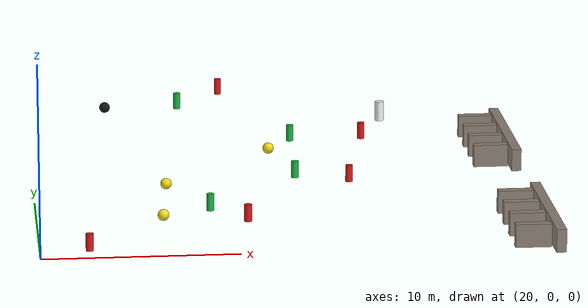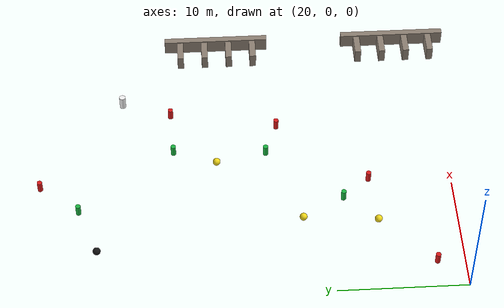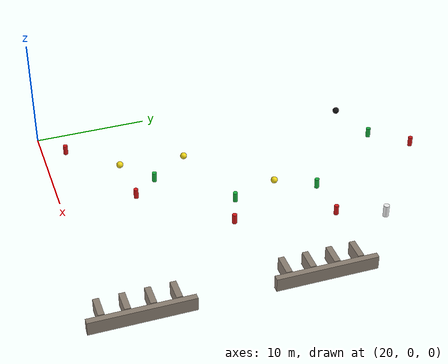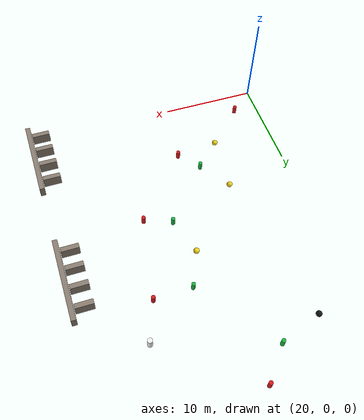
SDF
<sdf version="1.10">
 <world name="roboboat_course">
  <model name="gate_chan_b_right">
   <static>true</static>
   <pose>22.5244 2.1019 0.2000 0.0000 0.0000 0.0000</pose>
   <link name="link">
    <visual name="visual">
     <geometry><cylinder><radius>0.2000</radius><length>0.9000</length></cylinder></geometry>
     <material>
      <ambient>0.850 0.100 0.100 1.000</ambient>
      <diffuse>0.850 0.100 0.100 1.000</diffuse>
      <specular>0.1 0.1 0.1 1</specular>
      <emissive>0.212 0.025 0.025 1</emissive>
     </material>
    </visual>
   </link>
  </model>
  <model name="gate_chan_c_left">
   <static>true</static>
   <pose>29.1001 8.6725 0.2000 0.0000 0.0000 0.0000</pose>
   <link name="link">
    <visual name="visual">
     <geometry><cylinder><radius>0.2000</radius><length>0.9000</length></cylinder></geometry>
     <material>
      <ambient>0.100 0.700 0.250 1.000</ambient>
      <diffuse>0.100 0.700 0.250 1.000</diffuse>
      <specular>0.1 0.1 0.1 1</specular>
      <emissive>0.025 0.175 0.062 1</emissive>
     </material>
    </visual>
   </link>
  </model>
  <model name="gate_chan_c_right">
   <static>true</static>
   <pose>30.8999 6.5275 0.2000 0.0000 0.0000 0.0000</pose>
   <link name="link">
    <visual name="visual">
     <geometry><cylinder><radius>0.2000</radius><length>0.9000</length></cylinder></geometry>
     <material>
      <ambient>0.850 0.100 0.100 1.000</ambient>
      <diffuse>0.850 0.100 0.100 1.000</diffuse>
      <specular>0.1 0.1 0.1 1</specular>
      <emissive>0.212 0.025 0.025 1</emissive>
     </material>
    </visual>
   </link>
  </model>
  <model name="gate_chan_d_left">
   <static>true</static>
   <pose>34.0905 14.5130 0.2000 0.0000 0.0000 0.0000</pose>
   <link name="link">
    <visual name="visual">
     <geometry><cylinder><radius>0.2000</radius><length>0.9000</length></cylinder></geometry>
     <material>
      <ambient>0.100 0.700 0.250 1.000</ambient>
      <diffuse>0.100 0.700 0.250 1.000</diffuse>
      <specular>0.1 0.1 0.1 1</specular>
      <emissive>0.025 0.175 0.062 1</emissive>
     </material>
    </visual>
   </link>
  </model>
  <model name="gate_chan_d_right">
   <static>true</static>
   <pose>36.9095 13.4870 0.2000 0.0000 0.0000 0.0000</pose>
   <link name="link">
    <visual name="visual">
     <geometry><cylinder><radius>0.2000</radius><length>0.9000</length></cylinder></geometry>
     <material>
      <ambient>0.850 0.100 0.100 1.000</ambient>
      <diffuse>0.850 0.100 0.100 1.000</diffuse>
      <specular>0.1 0.1 0.1 1</specular>
      <emissive>0.212 0.025 0.025 1</emissive>
     </material>
    </visual>
   </link>
  </model>
  <model name="gate_speed_in_left">
   <static>true</static>
   <pose>34.5012 21.9302 0.2000 0.0000 0.0000 0.0000</pose>
   <link name="link">
    <visual name="visual">
     <geometry><cylinder><radius>0.2000</radius><length>0.9000</length></cylinder></geometry>
     <material>
      <ambient>0.100 0.700 0.250 1.000</ambient>
      <diffuse>0.100 0.700 0.250 1.000</diffuse>
      <specular>0.1 0.1 0.1 1</specular>
      <emissive>0.025 0.175 0.062 1</emissive>
     </material>
    </visual>
   </link>
  </model>
  <model name="gate_speed_in_right">
   <static>true</static>
   <pose>38.4988 22.0698 0.2000 0.0000 0.0000 0.0000</pose>
   <link name="link">
    <visual name="visual">
     <geometry><cylinder><radius>0.2000</radius><length>0.9000</length></cylinder></geometry>
     <material>
      <ambient>0.850 0.100 0.100 1.000</ambient>
      <diffuse>0.850 0.100 0.100 1.000</diffuse>
      <specular>0.1 0.1 0.1 1</specular>
      <emissive>0.212 0.025 0.025 1</emissive>
     </material>
    </visual>
   </link>
  </model>
  <model name="gate_speed_out_left">
   <static>true</static>
   <pose>28.7144 29.4679 0.2000 0.0000 0.0000 0.0000</pose>
   <link name="link">
    <visual name="visual">
     <geometry><cylinder><radius>0.2000</radius><length>0.9000</length></cylinder></geometry>
     <material>
      <ambient>0.100 0.700 0.250 1.000</ambient>
      <diffuse>0.100 0.700 0.250 1.000</diffuse>
      <specular>0.1 0.1 0.1 1</specular>
      <emissive>0.025 0.175 0.062 1</emissive>
     </material>
    </visual>
   </link>
  </model>
  <model name="gate_speed_out_right">
   <static>true</static>
   <pose>31.2856 32.5321 0.2000 0.0000 0.0000 0.0000</pose>
   <link name="link">
    <visual name="visual">
     <geometry><cylinder><radius>0.2000</radius><length>0.9000</length></cylinder></geometry>
     <material>
      <ambient>0.850 0.100 0.100 1.000</ambient>
      <diffuse>0.850 0.100 0.100 1.000</diffuse>
      <specular>0.1 0.1 0.1 1</specular>
      <emissive>0.212 0.025 0.025 1</emissive>
     </material>
    </visual>
   </link>
  </model>
  <model name="buoy_01_yellow">
   <static>true</static>
   <pose>26.5000 6.2000 0.3000 0.0000 0.0000 0.0000</pose>
   <link name="link">
    <visual name="visual">
     <geometry><sphere><radius>0.3000</radius></sphere></geometry>
     <material>
      <ambient>0.950 0.850 0.100 1.000</ambient>
      <diffuse>0.950 0.850 0.100 1.000</diffuse>
      <specular>0.1 0.1 0.1 1</specular>
      <emissive>0.237 0.212 0.025 1</emissive>
     </material>
    </visual>
   </link>
  </model>
  <model name="buoy_02_yellow">
   <static>true</static>
   <pose>33.0000 18.5000 0.3000 0.0000 0.0000 0.0000</pose>
   <link name="link">
    <visual name="visual">
     <geometry><sphere><radius>0.3000</radius></sphere></geometry>
     <material>
      <ambient>0.950 0.850 0.100 1.000</ambient>
      <diffuse>0.950 0.850 0.100 1.000</diffuse>
      <specular>0.1 0.1 0.1 1</specular>
      <emissive>0.237 0.212 0.025 1</emissive>
     </material>
    </visual>
   </link>
  </model>
  <model name="buoy_03_black">
   <static>true</static>
   <pose>24.5000 28.0000 0.3000 0.0000 0.0000 0.0000</pose>
   <link name="link">
    <visual name="visual">
     <geometry><sphere><radius>0.3000</radius></sphere></geometry>
     <material>
      <ambient>0.080 0.080 0.080 1.000</ambient>
      <diffuse>0.080 0.080 0.080 1.000</diffuse>
      <specular>0.1 0.1 0.1 1</specular>
      <emissive>0.020 0.020 0.020 1</emissive>
     </material>
    </visual>
   </link>
  </model>
  <model name="buoy_06_white">
   <static>true</static>
   <pose>40.0000 26.0000 0.2500 0.0000 0.0000 0.0000</pose>
   <link name="link">
    <visual name="visual">
     <geometry><cylinder><radius>0.2500</radius><length>1.1000</length></cylinder></geometry>
     <material>
      <ambient>0.950 0.950 0.950 1.000</ambient>
      <diffuse>0.950 0.950 0.950 1.000</diffuse>
      <specular>0.1 0.1 0.1 1</specular>
      <emissive>0.237 0.237 0.237 1</emissive>
     </material>
    </visual>
   </link>
  </model>
  <model name="buoy_09_yellow">
   <static>true</static>
   <pose>27.0000 12.0000 0.3000 0.0000 0.0000 0.0000</pose>
   <link name="link">
    <visual name="visual">
     <geometry><sphere><radius>0.3000</radius></sphere></geometry>
     <material>
      <ambient>0.950 0.850 0.100 1.000</ambient>
      <diffuse>0.950 0.850 0.100 1.000</diffuse>
      <specular>0.1 0.1 0.1 1</specular>
      <emissive>0.237 0.212 0.025 1</emissive>
     </material>
    </visual>
   </link>
  </model>
  <model name="wall_dock_s_spine">
   <static>true</static>
   <pose>46.0000 3.0500 0.6000 0.0000 0.0000 1.5708</pose>
   <link name="link">
    <visual name="visual">
     <geometry><box><size>8.6400 0.5100 1.2000</size></box></geometry>
     <material>
      <ambient>0.550 0.500 0.450 1.000</ambient>
      <diffuse>0.550 0.500 0.450 1.000</diffuse>
      <specular>0.1 0.1 0.1 1</specular>
      <emissive>0.138 0.125 0.113 1</emissive>
     </material>
    </visual>
   </link>
  </model>
  <model name="wall_dock_s_tine_1">
   <static>true</static>
   <pose>44.7500 -0.0200 0.6000 0.0000 0.0000 0.0000</pose>
   <link name="link">
    <visual name="visual">
     <geometry><box><size>1.8300 0.5100 1.2000</size></box></geometry>
     <material>
      <ambient>0.550 0.500 0.450 1.000</ambient>
      <diffuse>0.550 0.500 0.450 1.000</diffuse>
      <specular>0.1 0.1 0.1 1</specular>
      <emissive>0.138 0.125 0.113 1</emissive>
     </material>
    </visual>
   </link>
  </model>
  <model name="wall_dock_s_tine_2">
   <static>true</static>
   <pose>44.7500 2.0100 0.6000 0.0000 0.0000 0.0000</pose>
   <link name="link">
    <visual name="visual">
     <geometry><box><size>1.8300 0.5100 1.2000</size></box></geometry>
     <material>
      <ambient>0.550 0.500 0.450 1.000</ambient>
      <diffuse>0.550 0.500 0.450 1.000</diffuse>
      <specular>0.1 0.1 0.1 1</specular>
      <emissive>0.138 0.125 0.113 1</emissive>
     </material>
    </visual>
   </link>
  </model>
  <model name="wall_dock_s_tine_3">
   <static>true</static>
   <pose>44.7500 4.0400 0.6000 0.0000 0.0000 0.0000</pose>
   <link name="link">
    <visual name="visual">
     <geometry><box><size>1.8300 0.5100 1.2000</size></box></geometry>
     <material>
      <ambient>0.550 0.500 0.450 1.000</ambient>
      <diffuse>0.550 0.500 0.450 1.000</diffuse>
      <specular>0.1 0.1 0.1 1</specular>
      <emissive>0.138 0.125 0.113 1</emissive>
     </material>
    </visual>
   </link>
  </model>
  <model name="wall_dock_s_tine_4">
   <static>true</static>
   <pose>44.7500 6.0700 0.6000 0.0000 0.0000 0.0000</pose>
   <link name="link">
    <visual name="visual">
     <geometry><box><size>1.8300 0.5100 1.2000</size></box></geometry>
     <material>
      <ambient>0.550 0.500 0.450 1.000</ambient>
      <diffuse>0.550 0.500 0.450 1.000</diffuse>
      <specular>0.1 0.1 0.1 1</specular>
      <emissive>0.138 0.125 0.113 1</emissive>
     </material>
    </visual>
   </link>
  </model>
  <model name="wall_dock_n_spine">
   <static>true</static>
   <pose>46.0000 18.0500 0.6000 0.0000 0.0000 1.5708</pose>
   <link name="link">
    <visual name="visual">
     <geometry><box><size>8.6400 0.5100 1.2000</size></box></geometry>
     <material>
      <ambient>0.550 0.500 0.450 1.000</ambient>
      <diffuse>0.550 0.500 0.450 1.000</diffuse>
      <specular>0.1 0.1 0.1 1</specular>
      <emissive>0.138 0.125 0.113 1</emissive>
     </material>
    </visual>
   </link>
  </model>
  <model name="wall_dock_n_tine_1">
   <static>true</static>
   <pose>44.7500 14.9800 0.6000 0.0000 0.0000 0.0000</pose>
   <link name="link">
    <visual name="visual">
     <geometry><box><size>1.8300 0.5100 1.2000</size></box></geometry>
     <material>
      <ambient>0.550 0.500 0.450 1.000</ambient>
      <diffuse>0.550 0.500 0.450 1.000</diffuse>
      <specular>0.1 0.1 0.1 1</specular>
      <emissive>0.138 0.125 0.113 1</emissive>
     </material>
    </visual>
   </link>
  </model>
  <model name="wall_dock_n_tine_2">
   <static>true</static>
   <pose>44.7500 17.0100 0.6000 0.0000 0.0000 0.0000</pose>
   <link name="link">
    <visual name="visual">
     <geometry><box><size>1.8300 0.5100 1.2000</size></box></geometry>
     <material>
      <ambient>0.550 0.500 0.450 1.000</ambient>
      <diffuse>0.550 0.500 0.450 1.000</diffuse>
      <specular>0.1 0.1 0.1 1</specular>
      <emissive>0.138 0.125 0.113 1</emissive>
     </material>
    </visual>
   </link>
  </model>
  <model name="wall_dock_n_tine_3">
   <static>true</static>
   <pose>44.7500 19.0400 0.6000 0.0000 0.0000 0.0000</pose>
   <link name="link">
    <visual name="visual">
     <geometry><box><size>1.8300 0.5100 1.2000</size></box></geometry>
     <material>
      <ambient>0.550 0.500 0.450 1.000</ambient>
      <diffuse>0.550 0.500 0.450 1.000</diffuse>
      <specular>0.1 0.1 0.1 1</specular>
      <emissive>0.138 0.125 0.113 1</emissive>
     </material>
    </visual>
   </link>
  </model>
  <model name="wall_dock_n_tine_4">
   <static>true</static>
   <pose>44.7500 21.0700 0.6000 0.0000 0.0000 0.0000</pose>
   <link name="link">
    <visual name="visual">
     <geometry><box><size>1.8300 0.5100 1.2000</size></box></geometry>
     <material>
      <ambient>0.550 0.500 0.450 1.000</ambient>
      <diffuse>0.550 0.500 0.450 1.000</diffuse>
      <specular>0.1 0.1 0.1 1</specular>
      <emissive>0.138 0.125 0.113 1</emissive>
     </material>
    </visual>
   </link>
  </model>
 </world>
</sdf>
